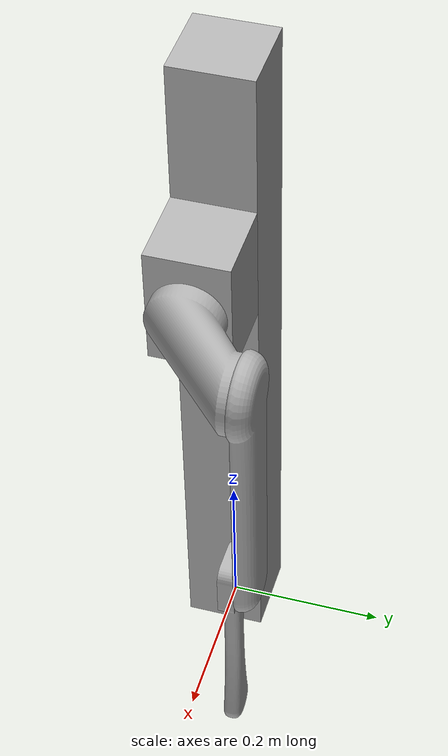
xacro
<?xml version="1.0" ?>
<robot name="teststandv2" xmlns:xacro="http://www.ros.org/wiki/xacro">

<xacro:include filename="$(find teststandv2_description)/urdf/materials.xacro" />
<xacro:include filename="$(find teststandv2_description)/urdf/teststandv2.trans" />
<xacro:include filename="$(find teststandv2_description)/urdf/teststandv2.gazebo" />
<link name="base_link">
  <inertial>
    <origin rpy="0 0 0" xyz="0.0 0.0 0.45"/>
    <mass value="70.65"/>
    <inertia ixx="4.82775" ixy="-0.0" ixz="-0.0" iyy="4.82775" iyz="0.0" izz="0.11775"/>
  </inertial>
  <visual>
    <origin rpy="0 0 0" xyz="0 0 0"/>
    <geometry>
      <mesh filename="package://teststandv2_description/meshes/base_link.stl" scale="0.001 0.001 0.001"/>
    </geometry>
    <material name="silver"/>
  </visual>
  <collision>
    <origin rpy="0 0 0" xyz="0 0 0"/>
    <geometry>
      <mesh filename="package://teststandv2_description/meshes/base_link.stl" scale="0.001 0.001 0.001"/>
    </geometry>
  </collision>
</link>

<link name="slider_1">
  <inertial>
    <origin rpy="0 0 0" xyz="0.05 1.4945082208820774e-17 0.2"/>
    <mass value="11.775"/>
    <inertia ixx="0.031891" ixy="-0.0" ixz="0.0" iyy="0.031891" iyz="-0.0" izz="0.019625"/>
  </inertial>
  <visual>
    <origin rpy="0 0 0" xyz="-0.05 -0.0 -0.45"/>
    <geometry>
      <mesh filename="package://teststandv2_description/meshes/slider_1.stl" scale="0.001 0.001 0.001"/>
    </geometry>
    <material name="silver"/>
  </visual>
  <collision>
    <origin rpy="0 0 0" xyz="-0.05 -0.0 -0.45"/>
    <geometry>
      <mesh filename="package://teststandv2_description/meshes/slider_1.stl" scale="0.001 0.001 0.001"/>
    </geometry>
  </collision>
</link>

<link name="hip_1">
  <inertial>
    <origin rpy="0 0 0" xyz="0.06156429527063745 0.03729325470146667 0.0"/>
    <mass value="5.973532362509098"/>
    <inertia ixx="0.01025" ixy="-0.006051" ixz="0.0" iyy="0.011226" iyz="0.0" izz="0.015428"/>
  </inertial>
  <visual>
    <origin rpy="0 0 0" xyz="-0.15 -0.0 -0.65"/>
    <geometry>
      <mesh filename="package://teststandv2_description/meshes/hip_1.stl" scale="0.001 0.001 0.001"/>
    </geometry>
    <material name="silver"/>
  </visual>
  <collision>
    <origin rpy="0 0 0" xyz="-0.15 -0.0 -0.65"/>
    <geometry>
      <mesh filename="package://teststandv2_description/meshes/hip_1.stl" scale="0.001 0.001 0.001"/>
    </geometry>
  </collision>
</link>

<link name="upper_leg_1">
  <inertial>
    <origin rpy="0 0 0" xyz="-0.0016127786590206528 0.0028511120274162943 -0.14873767411165983"/>
    <mass value="4.692716099399879"/>
    <inertia ixx="0.049843" ixy="-5e-06" ixz="-0.000212" iyy="0.05174" iyz="-0.000359" izz="0.002346"/>
  </inertial>
  <visual>
    <origin rpy="0 0 0" xyz="-0.253031 -0.0962 -0.65"/>
    <geometry>
      <mesh filename="package://teststandv2_description/meshes/upper_leg_1.stl" scale="0.001 0.001 0.001"/>
    </geometry>
    <material name="silver"/>
  </visual>
  <collision>
    <origin rpy="0 0 0" xyz="-0.253031 -0.0962 -0.65"/>
    <geometry>
      <mesh filename="package://teststandv2_description/meshes/upper_leg_1.stl" scale="0.001 0.001 0.001"/>
    </geometry>
  </collision>
</link>

<link name="sliding_piece">
  <inertial>
    <origin rpy="0 0 0" xyz="2.068428938017952e-06 -0.018739426742748533 -0.09272987597865728"/>
    <mass value="1.8340904220274463"/>
    <inertia ixx="0.016816" ixy="-0.0" ixz="-0.0" iyy="0.01703" iyz="-0.000214" izz="0.000385"/>
  </inertial>
  <visual>
    <origin rpy="0 0 0" xyz="-0.251131 -0.0962 -0.345"/>
    <geometry>
      <mesh filename="package://teststandv2_description/meshes/sliding_piece.stl" scale="0.001 0.001 0.001"/>
    </geometry>
    <material name="silver"/>
  </visual>
  <collision>
    <origin rpy="0 0 0" xyz="-0.251131 -0.0962 -0.345"/>
    <geometry>
      <mesh filename="package://teststandv2_description/meshes/sliding_peice.stl" scale="0.001 0.001 0.001"/>
    </geometry>
  </collision>
</link>

<link name="world"/>

<joint name="basetoground" type="fixed">
  <origin rpy="0 0 0" xyz="0 0.0 0"/>
  <parent link="world"/>
  <child link="base_link"/>
</joint>

<joint name="slider" type="prismatic">
  <origin rpy="0 0 0" xyz="0.05 0.0 0.45"/>
  <parent link="base_link"/>
  <child link="slider_1"/>
  <axis xyz="0.0 -1.0 0.0"/>
  <limit effort="100" lower="0.0" upper="0.0" velocity="100"/>
</joint>

<joint name="l1" type="continuous">
  <origin rpy="0 0 0" xyz="0.1 0.0 0.2"/>
  <parent link="slider_1"/>
  <child link="hip_1"/>
  <axis xyz="1.0 0.0 0.0"/>
</joint>

<joint name="l2" type="continuous">
  <origin rpy="0 0 0" xyz="0.103031 0.0962 0.0"/>
  <parent link="hip_1"/>
  <child link="upper_leg_1"/>
  <axis xyz="-0.0 1.0 0.0"/>
</joint>

<joint name="l3" type="continuous">
  <origin rpy="0 0 0" xyz="-0.0019 0.0 -0.305"/>
  <parent link="upper_leg_1"/>
  <child link="sliding_piece"/>
  <axis xyz="0.0 -1.0 -0.0"/>
</joint>

</robot>

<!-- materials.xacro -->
<robot name="teststandv2" xmlns:xacro="http://www.ros.org/wiki/xacro" >

<material name="silver">
  <color rgba="0.700 0.700 0.700 1.000"/>
</material>

</robot>

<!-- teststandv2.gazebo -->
<robot name="teststandv2" xmlns:xacro="http://www.ros.org/wiki/xacro" >

<xacro:property name="body_color" value="Gazebo/Silver" />

<gazebo>
  <plugin name="gazebo_ros_control" filename="libgazebo_ros_control.so">
    <robotNamespace>/teststandv2</robotNamespace>
  </plugin>
</gazebo>

<gazebo reference="base_link">
  <material>${body_color}</material>
  <mu1>0.2</mu1>
  <mu2>0.2</mu2>
  <selfCollide>true</selfCollide>
  <gravity>true</gravity>
</gazebo>

<gazebo reference="slider_1">
  <material>${body_color}</material>
  <mu1>0.2</mu1>
  <mu2>0.2</mu2>
  <selfCollide>true</selfCollide>
</gazebo>

<gazebo reference="hip_1">
  <material>${body_color}</material>
  <mu1>0.2</mu1>
  <mu2>0.2</mu2>
  <selfCollide>true</selfCollide>
</gazebo>

<gazebo reference="upper_leg_1">
  <material>${body_color}</material>
  <mu1>0.2</mu1>
  <mu2>0.2</mu2>
  <selfCollide>true</selfCollide>
</gazebo>

<gazebo reference="sliding_piece">
  <material>${body_color}</material>
  <mu1>0.2</mu1>
  <mu2>0.2</mu2>
  <selfCollide>true</selfCollide>
</gazebo>

</robot>
